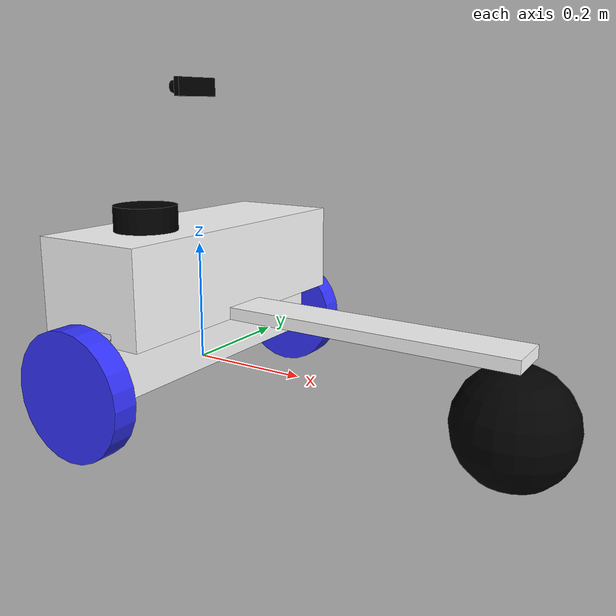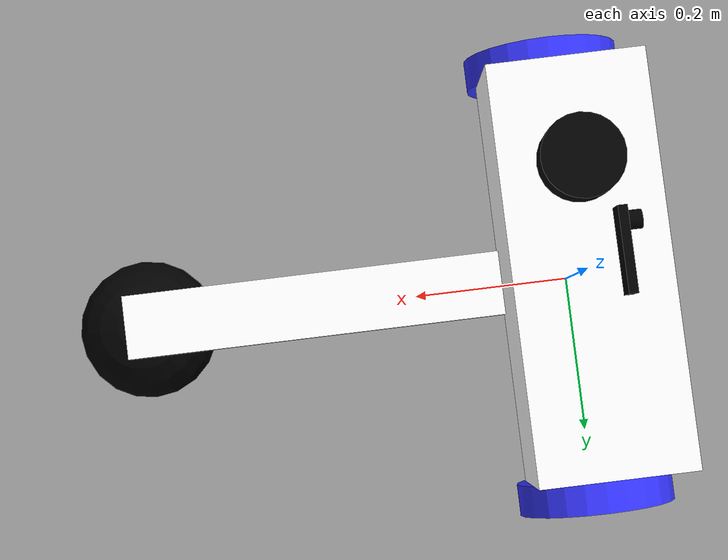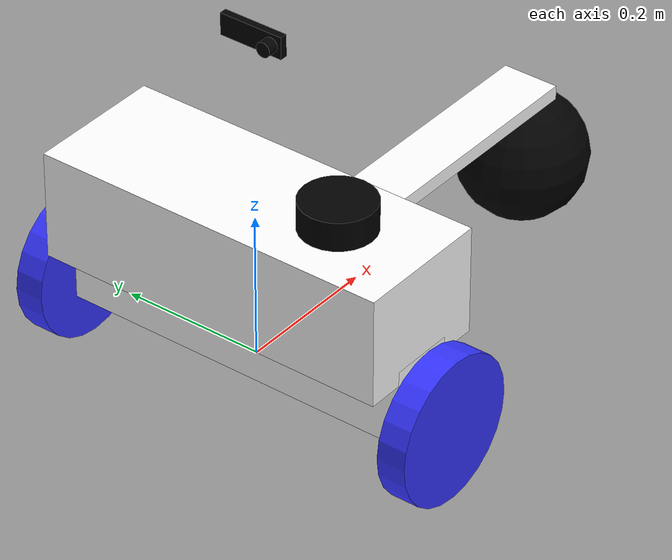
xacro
<?xml version="1.0"?>
<robot xmlns:xacro="http://www.ros.org/wiki/xacro"  name="robot">

    <xacro:arg name="use_ros2_control" default="true"/>
    <xacro:arg name="sim_mode" default="false"/>

    <xacro:include filename="robot_core.xacro" />
    <xacro:include filename="gazebo_control.xacro" />
    <xacro:include filename="lidar.xacro" />
    <xacro:include filename="left_camera.xacro" />
    <xacro:include filename="right_camera.xacro" />

    <xacro:if value="$(arg use_ros2_control)">
        <xacro:include filename="ros2_control.xacro" />
    </xacro:if>
    <xacro:unless value="$(arg use_ros2_control)">
        <xacro:include filename="gazebo_control.xacro" />
    </xacro:unless>
</robot>

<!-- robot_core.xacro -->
<robot xmlns:xacro="http://www.ros.org/wiki/xacro"  >

    <xacro:include filename="inertial_macros.xacro" />

    <material name="white">
        <color rgba="1 1 1 1" />
    </material>

    <material name="orange">
        <color rgba="1 0.3 0.1 1" />
    </material>

    <material name="blue">
        <color rgba="0.2 0.2 1 1" />
    </material>

    <material name="black">
        <color rgba="0 0 0 1" />
    </material>

<!-- Base link-->
    <link name="base_link">

    </link>

    <joint name="chassis_joint" type="fixed">
        <parent link="base_link"/>
        <child link="chassis"/>
        <origin xyz="-0.045 0 0"/>
    </joint>

<!-- chasis link-->
    <link name="chassis">
        <visual>
            <origin xyz="0.045 0.0 0.165" />
            <geometry>
                <box size="0.19 0.5 0.15"/>
            </geometry>
            <material name="white" />
        </visual>

        <visual>
            <origin xyz="0.33 0.0 0.10" />
            <geometry>
                <box size="0.57 0.08 0.02"/>
            </geometry>
            <material name="white" />
        </visual>

        <visual>
            <origin xyz="0.045 0.0 0.055" />
            <geometry>
                <box size="0.09 0.5 0.11"/>
            </geometry>
            <material name="white" />
        </visual>

        <collision>
            <origin xyz="0.045 0.0 0.165" />
            <geometry>
                <box size="0.19 0.5 0.15"/>
            </geometry>
        </collision>

        <collision>
            <origin xyz="0.045 0.0 0.165" />
            <geometry>
                <box size="0.19 0.5 0.15"/>
            </geometry>
        </collision>

        <collision>
            <origin xyz="0.045 0.0 0.055" />
            <geometry>
                <box size="0.09 0.5 0.11"/>
            </geometry>
        </collision>

        <inertial>
        <origin xyz="0.20 0.0 0" rpy="0 0 0"/>
        <mass value="1.9809343e+01"/>
        <inertia ixx="4.914e-01" iyy="2.317e-01" izz="5.354e-01"
                ixy="3.367e-16" ixz="-7.465e-03" iyz="1.793e-16"/>
        </inertial>
    </link>

    <gazebo reference="chassis">
        <material>Gazebo/White</material>
    </gazebo>

<!-- right wheel link-->
    <joint name="right_wheel_joint" type="continuous">
        <parent link="base_link"/>
        <child link="right_wheel"/>
        <origin xyz="0.0 0.28 0.02" rpy="-${pi/2} 0.0 0.0"/>
        <axis xyz="0.0 0.0 1"/>
    </joint>

    <link name="right_wheel">
        <visual>
            <geometry>
                <cylinder radius="0.1" length="0.04"/>
            </geometry>
            <material name="blue"/>

        </visual>

        <collision>
            <geometry>
                <cylinder radius="0.1" length="0.04"/>
            </geometry>
        </collision>
        <xacro:inertial_cylinder mass="0.1" length="0.04" radius="0.1" >
            <origin xyz="0.0 0.0 0.0" rpy="0.0 0.0 0.0"/>
        </xacro:inertial_cylinder>
    </link>

    <gazebo reference="right_wheel">
        <material>Gazebo/Blue</material>
    </gazebo>

<!-- left wheel link-->
    <joint name="left_wheel_joint" type="continuous">
        <parent link="base_link"/>
        <child link="left_wheel"/>
        <origin xyz="0 -0.28 0.02" rpy="${pi/2} 0 0"/>
        <axis xyz="0 0 -1"/>
    </joint>

    <link name="left_wheel">
        <visual>
            <geometry>
                <cylinder radius="0.1" length="0.04"/>
            </geometry>
            <material name="blue"/>

        </visual>

        <collision>
            <geometry>
                <cylinder radius="0.1" length="0.04"/>
            </geometry>

        </collision>
        <xacro:inertial_cylinder mass="0.1" length="0.04" radius="0.1" >
            <origin xyz="0 0 0" rpy="0 0 0"/>
        </xacro:inertial_cylinder>
    </link>

    <gazebo reference="left_wheel">
        <material>Gazebo/Blue</material>
    </gazebo>

<!-- caster wheel link-->
    <joint name="caster_wheel_joint" type="fixed">
        <parent link="chassis"/>
        <child link="caster_wheel"/>
        <origin xyz="0.6 0 0.00" />
    </joint>

    <link name="caster_wheel">
        <visual>
            <geometry>
                <sphere radius="0.09"/>
            </geometry>
            <material name="black"/>

        </visual>
        <collision>
            <geometry>
                <sphere radius="0.09"/>
            </geometry>

        </collision>

        <xacro:inertial_sphere mass="0.1" radius="0.05" >
            <origin xyz="0.0 0.0 0.0" rpy="0.0 0.0 0.0"/>
        </xacro:inertial_sphere>
    </link>

    <gazebo reference="caster_wheel">
        <material>Gazebo/Black</material>
        <mu1 value="0.001"/>
        <mu2 value="0.001"/>
    </gazebo>

</robot>

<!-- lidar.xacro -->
<robot xmlns:xacro="http://www.ros.org/wiki/xacro" >

    <joint name="laser_joint" type="fixed">
        <parent link="base_link"/>
        <child link="laser_frame"/>
        <origin xyz="0.0 -0.125 0.26" rpy="0 0 0"/>
    </joint>

    <link name="laser_frame">
        <visual>
            <geometry>
                <cylinder radius="0.05" length="0.04"/>
            </geometry>
            <material name="black"/>
        </visual>
        <visual>
            <origin xyz="0 0 -0.05"/>
            <geometry>
                <cylinder radius="0.01" length="0.1"/>
            </geometry>
            <material name="black"/>
        </visual>
        <collision>
            <geometry>
                <cylinder radius="0.05" length="0.04"/>
            </geometry>
        </collision>
        <xacro:inertial_cylinder mass="0.1" length="0.04" radius="0.05">
            <origin xyz="0 0 0" rpy="0 0 0"/>
        </xacro:inertial_cylinder>
    </link>

    <gazebo reference="laser_frame">
        <material>Gazebo/Black</material>

        <sensor name="laser" type="gpu_lidar">
            <pose> 0 0 0 0 0 0 </pose>
            <visualize>false</visualize>
            <update_rate>10</update_rate>
            <lidar>
                <scan>
                    <horizontal>
                        <samples>360</samples>
                        <min_angle>-3.14</min_angle>
                        <max_angle>3.14</max_angle>
                    </horizontal>
                </scan>
                <range>
                    <min>0.12</min>
                    <max>8</max>
                </range>
            </lidar>
            <topic>scan</topic>
            <gz_frame_id>laser_frame</gz_frame_id>
        </sensor>
    </gazebo>

</robot>

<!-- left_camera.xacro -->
<robot xmlns:xacro="http://www.ros.org/wiki/xacro" >

    <joint name="left_camera_joint" type="fixed">
        <parent link="base_link"/>
        <child link="left_camera_link"/>
        <origin xyz="0.0 0.0 0.46" rpy="0 0 0"/>
    </joint>

    <link name="left_camera_link">
        <visual>
            <geometry>
                <box size="0.01 0.09 0.03"/>
            </geometry>
            <material name="black"/>
        </visual>
        <visual>
            <origin xyz="-0.01 -0.03 0.0" rpy="0 1.5708 0"/>
            <geometry>
                <cylinder radius="0.01" length="0.02"/>
            </geometry>
            <material name="black"/>
        </visual>
    </link>

    <joint name="left_camera_optical_joint" type="fixed">
        <parent link="left_camera_link"/>
        <child link="left_camera_link_optical"/>
        <origin xyz="0 -0.03 0" rpy="${-pi/2} 0 ${-pi*3/2}"/>
    </joint>

    <link name="left_camera_link_optical"></link>

    <gazebo reference="left_camera_link">
        <material>Gazebo/Black</material>

        <sensor name="left_camera" type="camera">
            <pose> 0 0 0 0 0 ${pi} </pose>
            <visualize>true</visualize>
            <update_rate>10</update_rate>
            <camera name="left_camera">
                <camera_info_topic>left_camera/camera_info</camera_info_topic>
                <horizontal_fov>1.089</horizontal_fov>
                <image>
                    <format>R8G8B8</format>
                    <width>640</width>
                    <height>480</height>
                </image>
                <clip>
                    <near>0.05</near>
                    <far>8.0</far>
                </clip>
            </camera>
            <topic>left_camera/image_raw</topic>
            <gz_frame_id>left_camera_link_optical</gz_frame_id>
        </sensor>
    </gazebo>

</robot>

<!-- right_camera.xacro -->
<robot xmlns:xacro="http://www.ros.org/wiki/xacro" >

    <joint name="right_camera_joint" type="fixed">
        <parent link="base_link"/>
        <child link="right_camera_link"/>
        <origin xyz="0.0 0.0 0.46" rpy="0 0 0"/>
    </joint>

    <link name="right_camera_link">
        <visual>
            <geometry>
                <box size="0.01 0.09 0.03"/>
            </geometry>
            <material name="black"/>
        </visual>
        <visual>
            <origin xyz="-0.01 -0.03 0.0" rpy="0 1.5708 0"/>
            <geometry>
                <cylinder radius="0.01" length="0.02"/>
            </geometry>
            <material name="black"/>
        </visual>
    </link>

    <joint name="right_camera_optical_joint" type="fixed">
        <parent link="right_camera_link"/>
        <child link="right_camera_link_optical"/>
        <origin xyz="0 0.03 0" rpy="${-pi/2} 0 ${-pi*3/2}"/>
    </joint>

    <link name="right_camera_link_optical"></link>

    <gazebo reference="right_camera_link">
        <material>Gazebo/Black</material>

        <sensor name="right_camera" type="camera">
            <pose> 0 0 0 0 0 ${pi} </pose>
            <visualize>true</visualize>
            <update_rate>10</update_rate>
            <camera name="right_camera">
                <camera_info_topic>right_camera/camera_info</camera_info_topic>
                <horizontal_fov>1.089</horizontal_fov>
                <image>
                    <format>R8G8B8</format>
                    <width>640</width>
                    <height>480</height>
                </image>
                <clip>
                    <near>0.05</near>
                    <far>8.0</far>
                </clip>
            </camera>
            <topic>right_camera/image_raw</topic>
            <gz_frame_id>right_camera_link_optical</gz_frame_id>
        </sensor>
    </gazebo>

</robot>
